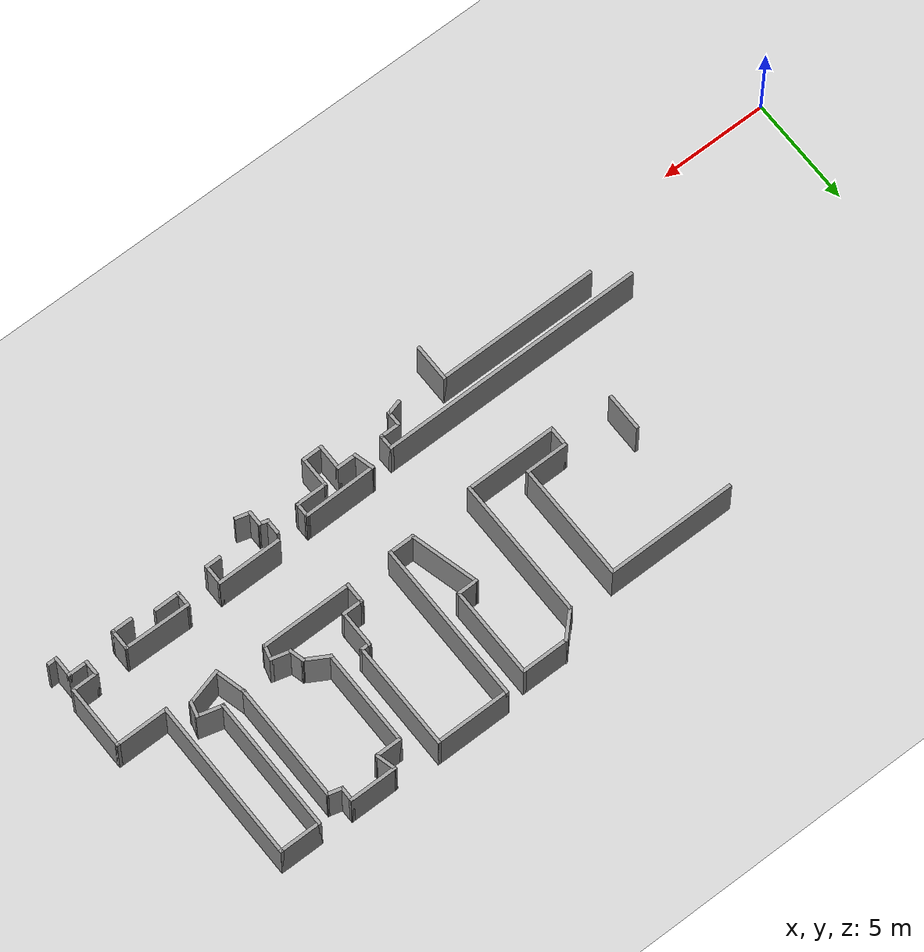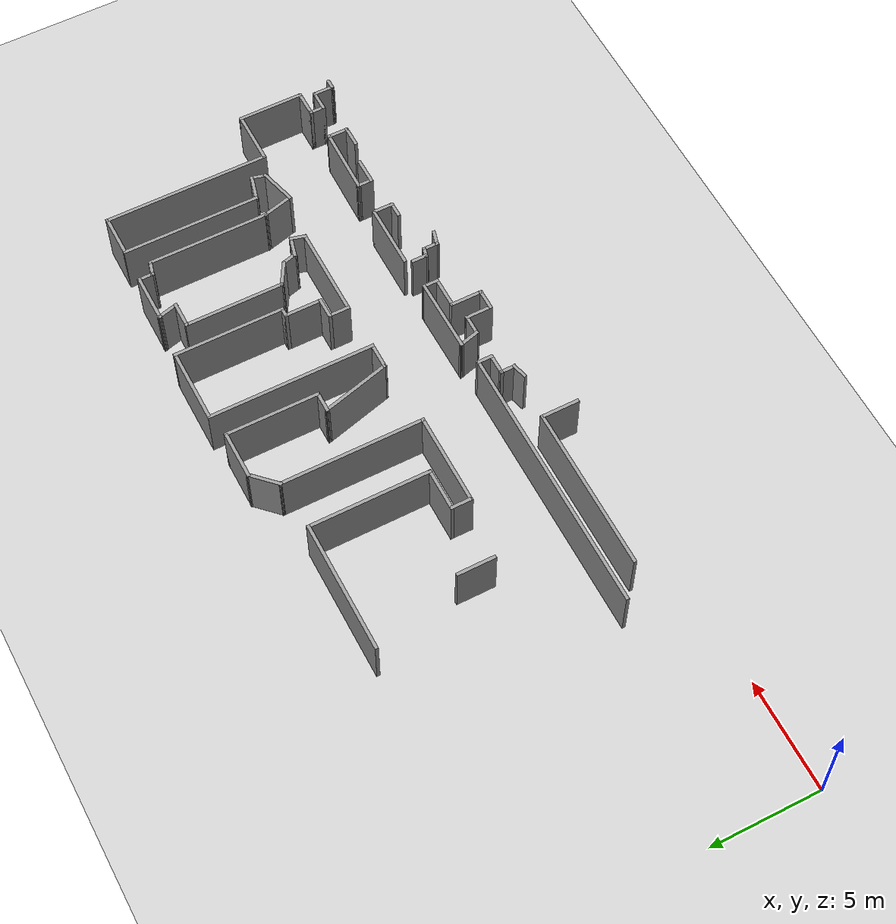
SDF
<sdf version="1.7">
 <world name="default">
  <model name="ground_plane">
   <static>1</static>
   <link name="link">
    <collision name="collision">
     <geometry><plane><normal>0 0 1</normal><size>100 100</size></plane></geometry>
     <surface>
      <contact><collide_bitmask>65535</collide_bitmask></contact>
      <friction><ode><mu>100</mu><mu2>50</mu2></ode></friction>
     </surface>
    </collision>
    <visual name="visual">
     <cast_shadows>0</cast_shadows>
     <geometry><plane><normal>0 0 1</normal><size>100 100</size></plane></geometry>
     <material>
      <script><uri>file://media/materials/scripts/gazebo.material</uri><name>Gazebo/Grey</name></script>
     </material>
    </visual>
   </link>
  </model>
  <model name="Hospital">
   <pose>0.328682 -0.388502 0 0 -0 0</pose>
   <link name="Wall_100">
    <collision name="Wall_100_Collision">
     <geometry><box><size>7.5 0.15 2.5</size></box></geometry>
     <pose>0 0 1.25 0 -0 0</pose>
    </collision>
    <visual name="Wall_100_Visual">
     <pose>0 0 1.25 0 -0 0</pose>
     <geometry><box><size>7.5 0.15 2.5</size></box></geometry>
     <material>
      <script><uri>file://media/materials/scripts/gazebo.material</uri><name>Gazebo/Grey</name></script>
      <ambient>1 1 1 1</ambient>
     </material>
     <meta><layer>0</layer></meta>
    </visual>
    <pose>34.79 10.5774 0 0 -0 -1.5708</pose>
   </link>
   <link name="Wall_101">
    <collision name="Wall_101_Collision">
     <geometry><box><size>2.5 0.15 2.5</size></box></geometry>
     <pose>0 0 1.25 0 -0 0</pose>
    </collision>
    <visual name="Wall_101_Visual">
     <pose>0 0 1.25 0 -0 0</pose>
     <geometry><box><size>2.5 0.15 2.5</size></box></geometry>
     <material>
      <script><uri>file://media/materials/scripts/gazebo.material</uri><name>Gazebo/Grey</name></script>
      <ambient>1 1 1 1</ambient>
     </material>
     <meta><layer>0</layer></meta>
    </visual>
    <pose>35.965 6.90241 0 0 -0 0</pose>
   </link>
   <link name="Wall_102">
    <collision name="Wall_102_Collision">
     <geometry><box><size>3 0.15 2.5</size></box></geometry>
     <pose>0 0 1.25 0 -0 0</pose>
    </collision>
    <visual name="Wall_102_Visual">
     <pose>0 0 1.25 0 -0 0</pose>
     <geometry><box><size>3 0.15 2.5</size></box></geometry>
     <material>
      <script><uri>file://media/materials/scripts/gazebo.material</uri><name>Gazebo/Grey</name></script>
      <ambient>1 1 1 1</ambient>
     </material>
     <meta><layer>0</layer></meta>
    </visual>
    <pose>37.14 5.47741 0 0 -0 -1.5708</pose>
   </link>
   <link name="Wall_103">
    <collision name="Wall_103_Collision">
     <geometry><box><size>1.25 0.15 2.5</size></box></geometry>
     <pose>0 0 1.25 0 -0 0</pose>
    </collision>
    <visual name="Wall_103_Visual">
     <pose>0 0 1.25 0 -0 0</pose>
     <geometry><box><size>1.25 0.15 2.5</size></box></geometry>
     <material>
      <script><uri>file://media/materials/scripts/gazebo.material</uri><name>Gazebo/Grey</name></script>
      <ambient>1 1 1 1</ambient>
     </material>
     <meta><layer>0</layer></meta>
    </visual>
    <pose>36.59 4.05241 0 0 -0 3.14159</pose>
   </link>
   <link name="Wall_104">
    <collision name="Wall_104_Collision">
     <geometry><box><size>0.75 0.15 2.5</size></box></geometry>
     <pose>0 0 1.25 0 -0 0</pose>
    </collision>
    <visual name="Wall_104_Visual">
     <pose>0 0 1.25 0 -0 0</pose>
     <geometry><box><size>0.75 0.15 2.5</size></box></geometry>
     <material>
      <script><uri>file://media/materials/scripts/gazebo.material</uri><name>Gazebo/Grey</name></script>
      <ambient>1 1 1 1</ambient>
     </material>
     <meta><layer>0</layer></meta>
    </visual>
    <pose>36.04 3.75241 0 0 -0 -1.5708</pose>
   </link>
   <link name="Wall_105">
    <collision name="Wall_105_Collision">
     <geometry><box><size>1 0.15 2.5</size></box></geometry>
     <pose>0 0 1.25 0 -0 0</pose>
    </collision>
    <visual name="Wall_105_Visual">
     <pose>0 0 1.25 0 -0 0</pose>
     <geometry><box><size>1 0.15 2.5</size></box></geometry>
     <material>
      <script><uri>file://media/materials/scripts/gazebo.material</uri><name>Gazebo/Grey</name></script>
      <ambient>1 1 1 1</ambient>
     </material>
     <meta><layer>0</layer></meta>
    </visual>
    <pose>36.465 3.45241 0 0 -0 0</pose>
   </link>
   <link name="Wall_106">
    <collision name="Wall_106_Collision">
     <geometry><box><size>1 0.15 2.5</size></box></geometry>
     <pose>0 0 1.25 0 -0 0</pose>
    </collision>
    <visual name="Wall_106_Visual">
     <pose>0 0 1.25 0 -0 0</pose>
     <geometry><box><size>1 0.15 2.5</size></box></geometry>
     <material>
      <script><uri>file://media/materials/scripts/gazebo.material</uri><name>Gazebo/Grey</name></script>
      <ambient>1 1 1 1</ambient>
     </material>
     <meta><layer>0</layer></meta>
    </visual>
    <pose>36.89 3.02741 0 0 -0 -1.5708</pose>
   </link>
   <link name="Wall_107">
    <collision name="Wall_107_Collision">
     <geometry><box><size>0.5 0.15 2.5</size></box></geometry>
     <pose>0 0 1.25 0 -0 0</pose>
    </collision>
    <visual name="Wall_107_Visual">
     <pose>0 0 1.25 0 -0 0</pose>
     <geometry><box><size>0.5 0.15 2.5</size></box></geometry>
     <material>
      <script><uri>file://media/materials/scripts/gazebo.material</uri><name>Gazebo/Grey</name></script>
      <ambient>1 1 1 1</ambient>
     </material>
     <meta><layer>0</layer></meta>
    </visual>
    <pose>37.065 2.60241 0 0 -0 0</pose>
   </link>
   <link name="Wall_131">
    <collision name="Wall_131_Collision">
     <geometry><box><size>0.75 0.15 2.5</size></box></geometry>
     <pose>0 0 1.25 0 -0 0</pose>
    </collision>
    <visual name="Wall_131_Visual">
     <pose>0 0 1.25 0 -0 0</pose>
     <geometry><box><size>0.75 0.15 2.5</size></box></geometry>
     <material>
      <script><uri>file://media/materials/scripts/gazebo.material</uri><name>Gazebo/Grey</name></script>
      <ambient>1 1 1 1</ambient>
     </material>
     <meta><layer>0</layer></meta>
    </visual>
    <pose>20.0552 2.37276 0 0 -0 0.261799</pose>
   </link>
   <link name="Wall_132">
    <collision name="Wall_132_Collision">
     <geometry><box><size>0.75 0.15 2.5</size></box></geometry>
     <pose>0 0 1.25 0 -0 0</pose>
    </collision>
    <visual name="Wall_132_Visual">
     <pose>0 0 1.25 0 -0 0</pose>
     <geometry><box><size>0.75 0.15 2.5</size></box></geometry>
     <material>
      <script><uri>file://media/materials/scripts/gazebo.material</uri><name>Gazebo/Grey</name></script>
      <ambient>1 1 1 1</ambient>
     </material>
     <meta><layer>0</layer></meta>
    </visual>
    <pose>20.3449 2.75041 0 0 -0 1.5708</pose>
   </link>
   <link name="Wall_133">
    <collision name="Wall_133_Collision">
     <geometry><box><size>1 0.15 2.5</size></box></geometry>
     <pose>0 0 1.25 0 -0 0</pose>
    </collision>
    <visual name="Wall_133_Visual">
     <pose>0 0 1.25 0 -0 0</pose>
     <geometry><box><size>1 0.15 2.5</size></box></geometry>
     <material>
      <script><uri>file://media/materials/scripts/gazebo.material</uri><name>Gazebo/Grey</name></script>
      <ambient>1 1 1 1</ambient>
     </material>
     <meta><layer>0</layer></meta>
    </visual>
    <pose>20.7699 3.05041 0 0 -0 0</pose>
   </link>
   <link name="Wall_134">
    <collision name="Wall_134_Collision">
     <geometry><box><size>0.75 0.15 2.5</size></box></geometry>
     <pose>0 0 1.25 0 -0 0</pose>
    </collision>
    <visual name="Wall_134_Visual">
     <pose>0 0 1.25 0 -0 0</pose>
     <geometry><box><size>0.75 0.15 2.5</size></box></geometry>
     <material>
      <script><uri>file://media/materials/scripts/gazebo.material</uri><name>Gazebo/Grey</name></script>
      <ambient>1 1 1 1</ambient>
     </material>
     <meta><layer>0</layer></meta>
    </visual>
    <pose>21.1949 3.35041 0 0 -0 1.5708</pose>
   </link>
   <link name="Wall_135">
    <collision name="Wall_135_Collision">
     <geometry><box><size>12.25 0.15 2.5</size></box></geometry>
     <pose>0 0 1.25 0 -0 0</pose>
    </collision>
    <visual name="Wall_135_Visual">
     <pose>0 0 1.25 0 -0 0</pose>
     <geometry><box><size>12.25 0.15 2.5</size></box></geometry>
     <material>
      <script><uri>file://media/materials/scripts/gazebo.material</uri><name>Gazebo/Grey</name></script>
      <ambient>1 1 1 1</ambient>
     </material>
     <meta><layer>0</layer></meta>
    </visual>
    <pose>15.1449 3.65041 0 0 -0 3.14159</pose>
   </link>
   <link name="Wall_140">
    <collision name="Wall_140_Collision">
     <geometry><box><size>7.5 0.15 2.5</size></box></geometry>
     <pose>0 0 1.25 0 -0 0</pose>
    </collision>
    <visual name="Wall_140_Visual">
     <pose>0 0 1.25 0 -0 0</pose>
     <geometry><box><size>7.5 0.15 2.5</size></box></geometry>
     <material>
      <script><uri>file://media/materials/scripts/gazebo.material</uri><name>Gazebo/Grey</name></script>
      <ambient>1 1 1 1</ambient>
     </material>
     <meta><layer>0</layer></meta>
    </visual>
    <pose>14.034 2.58789 0 0 -0 0</pose>
   </link>
   <link name="Wall_141">
    <collision name="Wall_141_Collision">
     <geometry><box><size>1.75 0.15 2.5</size></box></geometry>
     <pose>0 0 1.25 0 -0 0</pose>
    </collision>
    <visual name="Wall_141_Visual">
     <pose>0 0 1.25 0 -0 0</pose>
     <geometry><box><size>1.75 0.15 2.5</size></box></geometry>
     <material>
      <script><uri>file://media/materials/scripts/gazebo.material</uri><name>Gazebo/Grey</name></script>
      <ambient>1 1 1 1</ambient>
     </material>
     <meta><layer>0</layer></meta>
    </visual>
    <pose>17.709 1.78789 0 0 -0 -1.5708</pose>
   </link>
   <link name="Wall_409">
    <collision name="Wall_409_Collision">
     <geometry><box><size>1 0.15 2.5</size></box></geometry>
     <pose>0 0 1.25 0 -0 0</pose>
    </collision>
    <visual name="Wall_409_Visual">
     <pose>0 0 1.25 0 -0 0</pose>
     <geometry><box><size>1 0.15 2.5</size></box></geometry>
     <material>
      <script><uri>file://media/materials/scripts/gazebo.material</uri><name>Gazebo/Grey</name></script>
      <ambient>1 1 1 1</ambient>
     </material>
     <meta><layer>0</layer></meta>
    </visual>
    <pose>22.3914 3.44561 0 0 -0 -1.309</pose>
   </link>
   <link name="Wall_410">
    <collision name="Wall_410_Collision">
     <geometry><box><size>1 0.15 2.5</size></box></geometry>
     <pose>0 0 1.25 0 -0 0</pose>
    </collision>
    <visual name="Wall_410_Visual">
     <pose>0 0 1.25 0 -0 0</pose>
     <geometry><box><size>1 0.15 2.5</size></box></geometry>
     <material>
      <script><uri>file://media/materials/scripts/gazebo.material</uri><name>Gazebo/Grey</name></script>
      <ambient>1 1 1 1</ambient>
     </material>
     <meta><layer>0</layer></meta>
    </visual>
    <pose>22.9264 3.03509 0 0 -0 0</pose>
   </link>
   <link name="Wall_411">
    <collision name="Wall_411_Collision">
     <geometry><box><size>1.25 0.15 2.5</size></box></geometry>
     <pose>0 0 1.25 0 -0 0</pose>
    </collision>
    <visual name="Wall_411_Visual">
     <pose>0 0 1.25 0 -0 0</pose>
     <geometry><box><size>1.25 0.15 2.5</size></box></geometry>
     <material>
      <script><uri>file://media/materials/scripts/gazebo.material</uri><name>Gazebo/Grey</name></script>
      <ambient>1 1 1 1</ambient>
     </material>
     <meta><layer>0</layer></meta>
    </visual>
    <pose>23.3514 2.48509 0 0 -0 -1.5708</pose>
   </link>
   <link name="Wall_412">
    <collision name="Wall_412_Collision">
     <geometry><box><size>1 0.15 2.5</size></box></geometry>
     <pose>0 0 1.25 0 -0 0</pose>
    </collision>
    <visual name="Wall_412_Visual">
     <pose>0 0 1.25 0 -0 0</pose>
     <geometry><box><size>1 0.15 2.5</size></box></geometry>
     <material>
      <script><uri>file://media/materials/scripts/gazebo.material</uri><name>Gazebo/Grey</name></script>
      <ambient>1 1 1 1</ambient>
     </material>
     <meta><layer>0</layer></meta>
    </visual>
    <pose>23.7764 1.93509 0 0 -0 0</pose>
   </link>
   <link name="Wall_413">
    <collision name="Wall_413_Collision">
     <geometry><box><size>1.5 0.15 2.5</size></box></geometry>
     <pose>0 0 1.25 0 -0 0</pose>
    </collision>
    <visual name="Wall_413_Visual">
     <pose>0 0 1.25 0 -0 0</pose>
     <geometry><box><size>1.5 0.15 2.5</size></box></geometry>
     <material>
      <script><uri>file://media/materials/scripts/gazebo.material</uri><name>Gazebo/Grey</name></script>
      <ambient>1 1 1 1</ambient>
     </material>
     <meta><layer>0</layer></meta>
    </visual>
    <pose>24.2014 2.61009 0 0 -0 1.5708</pose>
   </link>
   <link name="Wall_414">
    <collision name="Wall_414_Collision">
     <geometry><box><size>1.5 0.15 2.5</size></box></geometry>
     <pose>0 0 1.25 0 -0 0</pose>
    </collision>
    <visual name="Wall_414_Visual">
     <pose>0 0 1.25 0 -0 0</pose>
     <geometry><box><size>1.5 0.15 2.5</size></box></geometry>
     <material>
      <script><uri>file://media/materials/scripts/gazebo.material</uri><name>Gazebo/Grey</name></script>
      <ambient>1 1 1 1</ambient>
     </material>
     <meta><layer>0</layer></meta>
    </visual>
    <pose>24.8764 3.28509 0 0 -0 0</pose>
   </link>
   <link name="Wall_415">
    <collision name="Wall_415_Collision">
     <geometry><box><size>0.75 0.15 2.5</size></box></geometry>
     <pose>0 0 1.25 0 -0 0</pose>
    </collision>
    <visual name="Wall_415_Visual">
     <pose>0 0 1.25 0 -0 0</pose>
     <geometry><box><size>0.75 0.15 2.5</size></box></geometry>
     <material>
      <script><uri>file://media/materials/scripts/gazebo.material</uri><name>Gazebo/Grey</name></script>
      <ambient>1 1 1 1</ambient>
     </material>
     <meta><layer>0</layer></meta>
    </visual>
    <pose>25.5514 3.58509 0 0 -0 1.5708</pose>
   </link>
   <link name="Wall_416">
    <collision name="Wall_416_Collision">
     <geometry><box><size>3.42012 0.15 2.5</size></box></geometry>
     <pose>0 0 1.25 0 -0 0</pose>
    </collision>
    <visual name="Wall_416_Visual">
     <pose>0 0 1.25 0 -0 0</pose>
     <geometry><box><size>3.42012 0.15 2.5</size></box></geometry>
     <material>
      <script><uri>file://media/materials/scripts/gazebo.material</uri><name>Gazebo/Grey</name></script>
      <ambient>1 1 1 1</ambient>
     </material>
     <meta><layer>0</layer></meta>
    </visual>
    <pose>23.9164 3.87061 0 0 -0 -3.13274</pose>
   </link>
   <link name="Wall_418">
    <collision name="Wall_418_Collision">
     <geometry><box><size>3 0.15 2.5</size></box></geometry>
     <pose>0 0 1.25 0 -0 0</pose>
    </collision>
    <visual name="Wall_418_Visual">
     <pose>0 0 1.25 0 -0 0</pose>
     <geometry><box><size>3 0.15 2.5</size></box></geometry>
     <material>
      <script><uri>file://media/materials/scripts/gazebo.material</uri><name>Gazebo/Grey</name></script>
      <ambient>1 1 1 1</ambient>
     </material>
     <meta><layer>0</layer></meta>
    </visual>
    <pose>28.5207 4.01795 0 0 -0 0</pose>
   </link>
   <link name="Wall_419">
    <collision name="Wall_419_Collision">
     <geometry><box><size>1 0.15 2.5</size></box></geometry>
     <pose>0 0 1.25 0 -0 0</pose>
    </collision>
    <visual name="Wall_419_Visual">
     <pose>0 0 1.25 0 -0 0</pose>
     <geometry><box><size>1 0.15 2.5</size></box></geometry>
     <material>
      <script><uri>file://media/materials/scripts/gazebo.material</uri><name>Gazebo/Grey</name></script>
      <ambient>1 1 1 1</ambient>
     </material>
     <meta><layer>0</layer></meta>
    </visual>
    <pose>29.9457 3.59295 0 0 -0 -1.5708</pose>
   </link>
   <link name="Wall_420">
    <collision name="Wall_420_Collision">
     <geometry><box><size>0.75 0.15 2.5</size></box></geometry>
     <pose>0 0 1.25 0 -0 0</pose>
    </collision>
    <visual name="Wall_420_Visual">
     <pose>0 0 1.25 0 -0 0</pose>
     <geometry><box><size>0.75 0.15 2.5</size></box></geometry>
     <material>
      <script><uri>file://media/materials/scripts/gazebo.material</uri><name>Gazebo/Grey</name></script>
      <ambient>1 1 1 1</ambient>
     </material>
     <meta><layer>0</layer></meta>
    </visual>
    <pose>29.6457 3.16795 0 0 -0 3.14159</pose>
   </link>
   <link name="Wall_432">
    <collision name="Wall_432_Collision">
     <geometry><box><size>0.75 0.15 2.5</size></box></geometry>
     <pose>0 0 1.25 0 -0 0</pose>
    </collision>
    <visual name="Wall_432_Visual">
     <pose>0 0 1.25 0 -0 0</pose>
     <geometry><box><size>0.75 0.15 2.5</size></box></geometry>
     <material>
      <script><uri>file://media/materials/scripts/gazebo.material</uri><name>Gazebo/Grey</name></script>
      <ambient>1 1 1 1</ambient>
     </material>
     <meta><layer>0</layer></meta>
    </visual>
    <pose>27.5303 2.33752 0 0 -0 2.87979</pose>
   </link>
   <link name="Wall_433">
    <collision name="Wall_433_Collision">
     <geometry><box><size>0.75 0.15 2.5</size></box></geometry>
     <pose>0 0 1.25 0 -0 0</pose>
    </collision>
    <visual name="Wall_433_Visual">
     <pose>0 0 1.25 0 -0 0</pose>
     <geometry><box><size>0.75 0.15 2.5</size></box></geometry>
     <material>
      <script><uri>file://media/materials/scripts/gazebo.material</uri><name>Gazebo/Grey</name></script>
      <ambient>1 1 1 1</ambient>
     </material>
     <meta><layer>0</layer></meta>
    </visual>
    <pose>27.2405 2.71517 0 0 -0 1.5708</pose>
   </link>
   <link name="Wall_434">
    <collision name="Wall_434_Collision">
     <geometry><box><size>0.5 0.15 2.5</size></box></geometry>
     <pose>0 0 1.25 0 -0 0</pose>
    </collision>
    <visual name="Wall_434_Visual">
     <pose>0 0 1.25 0 -0 0</pose>
     <geometry><box><size>0.5 0.15 2.5</size></box></geometry>
     <material>
      <script><uri>file://media/materials/scripts/gazebo.material</uri><name>Gazebo/Grey</name></script>
      <ambient>1 1 1 1</ambient>
     </material>
     <meta><layer>0</layer></meta>
    </visual>
    <pose>27.0715 3.06046 0 0 -0 2.87979</pose>
   </link>
   <link name="Wall_435">
    <collision name="Wall_435_Collision">
     <geometry><box><size>0.75 0.15 2.5</size></box></geometry>
     <pose>0 0 1.25 0 -0 0</pose>
    </collision>
    <visual name="Wall_435_Visual">
     <pose>0 0 1.25 0 -0 0</pose>
     <geometry><box><size>0.75 0.15 2.5</size></box></geometry>
     <material>
      <script><uri>file://media/materials/scripts/gazebo.material</uri><name>Gazebo/Grey</name></script>
      <ambient>1 1 1 1</ambient>
     </material>
     <meta><layer>0</layer></meta>
    </visual>
    <pose>26.9024 3.40576 0 0 -0 1.5708</pose>
   </link>
   <link name="Wall_437">
    <collision name="Wall_437_Collision">
     <geometry><box><size>0.75 0.15 2.5</size></box></geometry>
     <pose>0 0 1.25 0 -0 0</pose>
    </collision>
    <visual name="Wall_437_Visual">
     <pose>0 0 1.25 0 -0 0</pose>
     <geometry><box><size>0.75 0.15 2.5</size></box></geometry>
     <material>
      <script><uri>file://media/materials/scripts/gazebo.material</uri><name>Gazebo/Grey</name></script>
      <ambient>1 1 1 1</ambient>
     </material>
     <meta><layer>0</layer></meta>
    </visual>
    <pose>31.5053 3.6775 0 0 -0 -1.5708</pose>
   </link>
   <link name="Wall_438">
    <collision name="Wall_438_Collision">
     <geometry><box><size>1.25 0.15 2.5</size></box></geometry>
     <pose>0 0 1.25 0 -0 0</pose>
    </collision>
    <visual name="Wall_438_Visual">
     <pose>0 0 1.25 0 -0 0</pose>
     <geometry><box><size>1.25 0.15 2.5</size></box></geometry>
     <material>
      <script><uri>file://media/materials/scripts/gazebo.material</uri><name>Gazebo/Grey</name></script>
      <ambient>1 1 1 1</ambient>
     </material>
     <meta><layer>0</layer></meta>
    </visual>
    <pose>32.0553 3.3775 0 0 -0 0</pose>
   </link>
   <link name="Wall_448">
    <collision name="Wall_448_Collision">
     <geometry><box><size>1 0.15 2.5</size></box></geometry>
     <pose>0 0 1.25 0 -0 0</pose>
    </collision>
    <visual name="Wall_448_Visual">
     <pose>0 0 1.25 0 -0 0</pose>
     <geometry><box><size>1 0.15 2.5</size></box></geometry>
     <material>
      <script><uri>file://media/materials/scripts/gazebo.material</uri><name>Gazebo/Grey</name></script>
      <ambient>1 1 1 1</ambient>
     </material>
     <meta><layer>0</layer></meta>
    </visual>
    <pose>34.0422 3.07866 0 0 -0 0</pose>
   </link>
   <link name="Wall_449">
    <collision name="Wall_449_Collision">
     <geometry><box><size>1 0.15 2.5</size></box></geometry>
     <pose>0 0 1.25 0 -0 0</pose>
    </collision>
    <visual name="Wall_449_Visual">
     <pose>0 0 1.25 0 -0 0</pose>
     <geometry><box><size>1 0.15 2.5</size></box></geometry>
     <material>
      <script><uri>file://media/materials/scripts/gazebo.material</uri><name>Gazebo/Grey</name></script>
      <ambient>1 1 1 1</ambient>
     </material>
     <meta><layer>0</layer></meta>
    </visual>
    <pose>34.4672 3.50366 0 0 -0 1.5708</pose>
   </link>
   <link name="Wall_450">
    <collision name="Wall_450_Collision">
     <geometry><box><size>3.11233 0.15 2.5</size></box></geometry>
     <pose>0 0 1.25 0 -0 0</pose>
    </collision>
    <visual name="Wall_450_Visual">
     <pose>0 0 1.25 0 -0 0</pose>
     <geometry><box><size>3.11233 0.15 2.5</size></box></geometry>
     <material>
      <script><uri>file://media/materials/scripts/gazebo.material</uri><name>Gazebo/Grey</name></script>
      <ambient>1 1 1 1</ambient>
     </material>
     <meta><layer>0</layer></meta>
    </visual>
    <pose>32.9863 3.95308 0 0 -0 3.12511</pose>
   </link>
   <link name="Wall_60">
    <collision name="Wall_60_Collision">
     <geometry><box><size>1.75 0.15 2.5</size></box></geometry>
     <pose>0 0 1.25 0 -0 0</pose>
    </collision>
    <visual name="Wall_60_Visual">
     <pose>0 0 1.25 0 -0 0</pose>
     <geometry><box><size>1.75 0.15 2.5</size></box></geometry>
     <material>
      <script><uri>file://media/materials/scripts/gazebo.material</uri><name>Gazebo/Grey</name></script>
      <ambient>1 1 1 1</ambient>
     </material>
     <meta><layer>0</layer></meta>
    </visual>
    <pose>13.0135 8.12356 0 0 -0 1.5708</pose>
   </link>
   <link name="Wall_63">
    <collision name="Wall_63_Collision">
     <geometry><box><size>6 0.15 2.5</size></box></geometry>
     <pose>0 0 1.25 0 -0 0</pose>
    </collision>
    <visual name="Wall_63_Visual">
     <pose>0 0 1.25 0 -0 0</pose>
     <geometry><box><size>6 0.15 2.5</size></box></geometry>
     <material>
      <script><uri>file://media/materials/scripts/gazebo.material</uri><name>Gazebo/Grey</name></script>
      <ambient>1 1 1 1</ambient>
     </material>
     <meta><layer>0</layer></meta>
    </visual>
    <pose>14.6345 13.123 0 0 -0 0</pose>
   </link>
   <link name="Wall_64">
    <collision name="Wall_64_Collision">
     <geometry><box><size>5.5 0.15 2.5</size></box></geometry>
     <pose>0 0 1.25 0 -0 0</pose>
    </collision>
    <visual name="Wall_64_Visual">
     <pose>0 0 1.25 0 -0 0</pose>
     <geometry><box><size>5.5 0.15 2.5</size></box></geometry>
     <material>
      <script><uri>file://media/materials/scripts/gazebo.material</uri><name>Gazebo/Grey</name></script>
      <ambient>1 1 1 1</ambient>
     </material>
     <meta><layer>0</layer></meta>
    </visual>
    <pose>17.5595 10.448 0 0 -0 -1.5708</pose>
   </link>
   <link name="Wall_65">
    <collision name="Wall_65_Collision">
     <geometry><box><size>2 0.15 2.5</size></box></geometry>
     <pose>0 0 1.25 0 -0 0</pose>
    </collision>
    <visual name="Wall_65_Visual">
     <pose>0 0 1.25 0 -0 0</pose>
     <geometry><box><size>2 0.15 2.5</size></box></geometry>
     <material>
      <script><uri>file://media/materials/scripts/gazebo.material</uri><name>Gazebo/Grey</name></script>
      <ambient>1 1 1 1</ambient>
     </material>
     <meta><layer>0</layer></meta>
    </visual>
    <pose>16.6345 7.77297 0 0 -0 3.14159</pose>
   </link>
   <link name="Wall_66">
    <collision name="Wall_66_Collision">
     <geometry><box><size>1 0.15 2.5</size></box></geometry>
     <pose>0 0 1.25 0 -0 0</pose>
    </collision>
    <visual name="Wall_66_Visual">
     <pose>0 0 1.25 0 -0 0</pose>
     <geometry><box><size>1 0.15 2.5</size></box></geometry>
     <material>
      <script><uri>file://media/materials/scripts/gazebo.material</uri><name>Gazebo/Grey</name></script>
      <ambient>1 1 1 1</ambient>
     </material>
     <meta><layer>0</layer></meta>
    </visual>
    <pose>15.7095 7.34797 0 0 -0 -1.5708</pose>
   </link>
   <link name="Wall_67">
    <collision name="Wall_67_Collision">
     <geometry><box><size>4.25 0.15 2.5</size></box></geometry>
     <pose>0 0 1.25 0 -0 0</pose>
    </collision>
    <visual name="Wall_67_Visual">
     <pose>0 0 1.25 0 -0 0</pose>
     <geometry><box><size>4.25 0.15 2.5</size></box></geometry>
     <material>
      <script><uri>file://media/materials/scripts/gazebo.material</uri><name>Gazebo/Grey</name></script>
      <ambient>1 1 1 1</ambient>
     </material>
     <meta><layer>0</layer></meta>
    </visual>
    <pose>17.7595 6.92297 0 0 -0 0</pose>
   </link>
   <link name="Wall_68">
    <collision name="Wall_68_Collision">
     <geometry><box><size>6.5 0.15 2.5</size></box></geometry>
     <pose>0 0 1.25 0 -0 0</pose>
    </collision>
    <visual name="Wall_68_Visual">
     <pose>0 0 1.25 0 -0 0</pose>
     <geometry><box><size>6.5 0.15 2.5</size></box></geometry>
     <material>
      <script><uri>file://media/materials/scripts/gazebo.material</uri><name>Gazebo/Grey</name></script>
      <ambient>1 1 1 1</ambient>
     </material>
     <meta><layer>0</layer></meta>
    </visual>
    <pose>19.8095 10.098 0 0 -0 1.5708</pose>
   </link>
   <link name="Wall_69">
    <collision name="Wall_69_Collision">
     <geometry><box><size>1.5 0.15 2.5</size></box></geometry>
     <pose>0 0 1.25 0 -0 0</pose>
    </collision>
    <visual name="Wall_69_Visual">
     <pose>0 0 1.25 0 -0 0</pose>
     <geometry><box><size>1.5 0.15 2.5</size></box></geometry>
     <material>
      <script><uri>file://media/materials/scripts/gazebo.material</uri><name>Gazebo/Grey</name></script>
      <ambient>1 1 1 1</ambient>
     </material>
     <meta><layer>0</layer></meta>
    </visual>
    <pose>20.2868 13.7503 0 0 -0 0.785398</pose>
   </link>
   <link name="Wall_70">
    <collision name="Wall_70_Collision">
     <geometry><box><size>2.25 0.15 2.5</size></box></geometry>
     <pose>0 0 1.25 0 -0 0</pose>
    </collision>
    <visual name="Wall_70_Visual">
     <pose>0 0 1.25 0 -0 0</pose>
     <geometry><box><size>2.25 0.15 2.5</size></box></geometry>
     <material>
      <script><uri>file://media/materials/scripts/gazebo.material</uri><name>Gazebo/Grey</name></script>
      <ambient>1 1 1 1</ambient>
     </material>
     <meta><layer>0</layer></meta>
    </visual>
    <pose>21.8141 14.2276 0 0 -0 0</pose>
   </link>
   <link name="Wall_71">
    <collision name="Wall_71_Collision">
     <geometry><box><size>4.25 0.15 2.5</size></box></geometry>
     <pose>0 0 1.25 0 -0 0</pose>
    </collision>
    <visual name="Wall_71_Visual">
     <pose>0 0 1.25 0 -0 0</pose>
     <geometry><box><size>4.25 0.15 2.5</size></box></geometry>
     <material>
      <script><uri>file://media/materials/scripts/gazebo.material</uri><name>Gazebo/Grey</name></script>
      <ambient>1 1 1 1</ambient>
     </material>
     <meta><layer>0</layer></meta>
    </visual>
    <pose>22.8641 12.1776 0 0 -0 -1.5708</pose>
   </link>
   <link name="Wall_72">
    <collision name="Wall_72_Collision">
     <geometry><box><size>1 0.15 2.5</size></box></geometry>
     <pose>0 0 1.25 0 -0 0</pose>
    </collision>
    <visual name="Wall_72_Visual">
     <pose>0 0 1.25 0 -0 0</pose>
     <geometry><box><size>1 0.15 2.5</size></box></geometry>
     <material>
      <script><uri>file://media/materials/scripts/gazebo.material</uri><name>Gazebo/Grey</name></script>
      <ambient>1 1 1 1</ambient>
     </material>
     <meta><layer>0</layer></meta>
    </visual>
    <pose>22.4391 10.1276 0 0 -0 3.14159</pose>
   </link>
   <link name="Wall_73">
    <collision name="Wall_73_Collision">
     <geometry><box><size>3.25 0.15 2.5</size></box></geometry>
     <pose>0 0 1.25 0 -0 0</pose>
    </collision>
    <visual name="Wall_73_Visual">
     <pose>0 0 1.25 0 -0 0</pose>
     <geometry><box><size>3.25 0.15 2.5</size></box></geometry>
     <material>
      <script><uri>file://media/materials/scripts/gazebo.material</uri><name>Gazebo/Grey</name></script>
      <ambient>1 1 1 1</ambient>
     </material>
     <meta><layer>0</layer></meta>
    </visual>
    <pose>22.4153 8.63038 0 0 -0 -1.309</pose>
   </link>
   <link name="Wall_74">
    <collision name="Wall_74_Collision">
     <geometry><box><size>1.25 0.15 2.5</size></box></geometry>
     <pose>0 0 1.25 0 -0 0</pose>
    </collision>
    <visual name="Wall_74_Visual">
     <pose>0 0 1.25 0 -0 0</pose>
     <geometry><box><size>1.25 0.15 2.5</size></box></geometry>
     <material>
      <script><uri>file://media/materials/scripts/gazebo.material</uri><name>Gazebo/Grey</name></script>
      <ambient>1 1 1 1</ambient>
     </material>
     <meta><layer>0</layer></meta>
    </visual>
    <pose>23.3665 7.13319 0 0 -0 0</pose>
   </link>
   <link name="Wall_75">
    <collision name="Wall_75_Collision">
     <geometry><box><size>7.5 0.15 2.5</size></box></geometry>
     <pose>0 0 1.25 0 -0 0</pose>
    </collision>
    <visual name="Wall_75_Visual">
     <pose>0 0 1.25 0 -0 0</pose>
     <geometry><box><size>7.5 0.15 2.5</size></box></geometry>
     <material>
      <script><uri>file://media/materials/scripts/gazebo.material</uri><name>Gazebo/Grey</name></script>
      <ambient>1 1 1 1</ambient>
     </material>
     <meta><layer>0</layer></meta>
    </visual>
    <pose>23.9165 10.8082 0 0 -0 1.5708</pose>
   </link>
   <link name="Wall_76">
    <collision name="Wall_76_Collision">
     <geometry><box><size>3.5 0.15 2.5</size></box></geometry>
     <pose>0 0 1.25 0 -0 0</pose>
    </collision>
    <visual name="Wall_76_Visual">
     <pose>0 0 1.25 0 -0 0</pose>
     <geometry><box><size>3.5 0.15 2.5</size></box></geometry>
     <material>
      <script><uri>file://media/materials/scripts/gazebo.material</uri><name>Gazebo/Grey</name></script>
      <ambient>1 1 1 1</ambient>
     </material>
     <meta><layer>0</layer></meta>
    </visual>
    <pose>25.5915 14.4832 0 0 -0 0</pose>
   </link>
   <link name="Wall_77">
    <collision name="Wall_77_Collision">
     <geometry><box><size>5 0.15 2.5</size></box></geometry>
     <pose>0 0 1.25 0 -0 0</pose>
    </collision>
    <visual name="Wall_77_Visual">
     <pose>0 0 1.25 0 -0 0</pose>
     <geometry><box><size>5 0.15 2.5</size></box></geometry>
     <material>
      <script><uri>file://media/materials/scripts/gazebo.material</uri><name>Gazebo/Grey</name></script>
      <ambient>1 1 1 1</ambient>
     </material>
     <meta><layer>0</layer></meta>
    </visual>
    <pose>27.2665 12.0582 0 0 -0 -1.5708</pose>
   </link>
   <link name="Wall_78">
    <collision name="Wall_78_Collision">
     <geometry><box><size>0.5 0.15 2.5</size></box></geometry>
     <pose>0 0 1.25 0 -0 0</pose>
    </collision>
    <visual name="Wall_78_Visual">
     <pose>0 0 1.25 0 -0 0</pose>
     <geometry><box><size>0.5 0.15 2.5</size></box></geometry>
     <material>
      <script><uri>file://media/materials/scripts/gazebo.material</uri><name>Gazebo/Grey</name></script>
      <ambient>1 1 1 1</ambient>
     </material>
     <meta><layer>0</layer></meta>
    </visual>
    <pose>27.0915 9.63319 0 0 -0 3.14159</pose>
   </link>
   <link name="Wall_79">
    <collision name="Wall_79_Collision">
     <geometry><box><size>1.75 0.15 2.5</size></box></geometry>
     <pose>0 0 1.25 0 -0 0</pose>
    </collision>
    <visual name="Wall_79_Visual">
     <pose>0 0 1.25 0 -0 0</pose>
     <geometry><box><size>1.75 0.15 2.5</size></box></geometry>
     <material>
      <script><uri>file://media/materials/scripts/gazebo.material</uri><name>Gazebo/Grey</name></script>
      <ambient>1 1 1 1</ambient>
     </material>
     <meta><layer>0</layer></meta>
    </visual>
    <pose>26.9165 8.83319 0 0 -0 -1.5708</pose>
   </link>
   <link name="Wall_80">
    <collision name="Wall_80_Collision">
     <geometry><box><size>1 0.15 2.5</size></box></geometry>
     <pose>0 0 1.25 0 -0 0</pose>
    </collision>
    <visual name="Wall_80_Visual">
     <pose>0 0 1.25 0 -0 0</pose>
     <geometry><box><size>1 0.15 2.5</size></box></geometry>
     <material>
      <script><uri>file://media/materials/scripts/gazebo.material</uri><name>Gazebo/Grey</name></script>
      <ambient>1 1 1 1</ambient>
     </material>
     <meta><layer>0</layer></meta>
    </visual>
    <pose>26.4915 8.03319 0 0 -0 3.14159</pose>
   </link>
   <link name="Wall_81">
    <collision name="Wall_81_Collision">
     <geometry><box><size>1 0.15 2.5</size></box></geometry>
     <pose>0 0 1.25 0 -0 0</pose>
    </collision>
    <visual name="Wall_81_Visual">
     <pose>0 0 1.25 0 -0 0</pose>
     <geometry><box><size>1 0.15 2.5</size></box></geometry>
     <material>
      <script><uri>file://media/materials/scripts/gazebo.material</uri><name>Gazebo/Grey</name></script>
      <ambient>1 1 1 1</ambient>
     </material>
     <meta><layer>0</layer></meta>
    </visual>
    <pose>26.0665 7.60819 0 0 -0 -1.5708</pose>
   </link>
   <link name="Wall_82">
    <collision name="Wall_82_Collision">
     <geometry><box><size>4.25 0.15 2.5</size></box></geometry>
     <pose>0 0 1.25 0 -0 0</pose>
    </collision>
    <visual name="Wall_82_Visual">
     <pose>0 0 1.25 0 -0 0</pose>
     <geometry><box><size>4.25 0.15 2.5</size></box></geometry>
     <material>
      <script><uri>file://media/materials/scripts/gazebo.material</uri><name>Gazebo/Grey</name></script>
      <ambient>1 1 1 1</ambient>
     </material>
     <meta><layer>0</layer></meta>
    </visual>
    <pose>28.1165 7.18319 0 0 -0 0</pose>
   </link>
   <link name="Wall_83">
    <collision name="Wall_83_Collision">
     <geometry><box><size>0.75 0.15 2.5</size></box></geometry>
     <pose>0 0 1.25 0 -0 0</pose>
    </collision>
    <visual name="Wall_83_Visual">
     <pose>0 0 1.25 0 -0 0</pose>
     <geometry><box><size>0.75 0.15 2.5</size></box></geometry>
     <material>
      <script><uri>file://media/materials/scripts/gazebo.material</uri><name>Gazebo/Grey</name></script>
      <ambient>1 1 1 1</ambient>
     </material>
     <meta><layer>0</layer></meta>
    </visual>
    <pose>30.2441 7.47297 0 0 -0 1.309</pose>
   </link>
   <link name="Wall_84">
    <collision name="Wall_84_Collision">
     <geometry><box><size>1 0.15 2.5</size></box></geometry>
     <pose>0 0 1.25 0 -0 0</pose>
    </collision>
    <visual name="Wall_84_Visual">
     <pose>0 0 1.25 0 -0 0</pose>
     <geometry><box><size>1 0.15 2.5</size></box></geometry>
     <material>
      <script><uri>file://media/materials/scripts/gazebo.material</uri><name>Gazebo/Grey</name></script>
      <ambient>1 1 1 1</ambient>
     </material>
     <meta><layer>0</layer></meta>
    </visual>
    <pose>29.9112 7.87275 0 0 -0 2.87979</pose>
   </link>
   <link name="Wall_85">
    <collision name="Wall_85_Collision">
     <geometry><box><size>0.75 0.15 2.5</size></box></geometry>
     <pose>0 0 1.25 0 -0 0</pose>
    </collision>
    <visual name="Wall_85_Visual">
     <pose>0 0 1.25 0 -0 0</pose>
     <geometry><box><size>0.75 0.15 2.5</size></box></geometry>
     <material>
      <script><uri>file://media/materials/scripts/gazebo.material</uri><name>Gazebo/Grey</name></script>
      <ambient>1 1 1 1</ambient>
     </material>
     <meta><layer>0</layer></meta>
    </visual>
    <pose>29.4231 8.27252 0 0 -0 1.8326</pose>
   </link>
   <link name="Wall_86">
    <collision name="Wall_86_Collision">
     <geometry><box><size>1.25 0.15 2.5</size></box></geometry>
     <pose>0 0 1.25 0 -0 0</pose>
    </collision>
    <visual name="Wall_86_Visual">
     <pose>0 0 1.25 0 -0 0</pose>
     <geometry><box><size>1.25 0.15 2.5</size></box></geometry>
     <material>
      <script><uri>file://media/materials/scripts/gazebo.material</uri><name>Gazebo/Grey</name></script>
      <ambient>1 1 1 1</ambient>
     </material>
     <meta><layer>0</layer></meta>
    </visual>
    <pose>28.8691 8.8373 0 0 -0 2.61799</pose>
   </link>
   <link name="Wall_87">
    <collision name="Wall_87_Collision">
     <geometry><box><size>4.5 0.15 2.5</size></box></geometry>
     <pose>0 0 1.25 0 -0 0</pose>
    </collision>
    <visual name="Wall_87_Visual">
     <pose>0 0 1.25 0 -0 0</pose>
     <geometry><box><size>4.5 0.15 2.5</size></box></geometry>
     <material>
      <script><uri>file://media/materials/scripts/gazebo.material</uri><name>Gazebo/Grey</name></script>
      <ambient>1 1 1 1</ambient>
     </material>
     <meta><layer>0</layer></meta>
    </visual>
    <pose>28.3928 11.2873 0 0 -0 1.5708</pose>
   </link>
   <link name="Wall_88">
    <collision name="Wall_88_Collision">
     <geometry><box><size>1.25 0.15 2.5</size></box></geometry>
     <pose>0 0 1.25 0 -0 0</pose>
    </collision>
    <visual name="Wall_88_Visual">
     <pose>0 0 1.25 0 -0 0</pose>
     <geometry><box><size>1.25 0.15 2.5</size></box></geometry>
     <material>
      <script><uri>file://media/materials/scripts/gazebo.material</uri><name>Gazebo/Grey</name></script>
      <ambient>1 1 1 1</ambient>
     </material>
     <meta><layer>0</layer></meta>
    </visual>
    <pose>28.9428 13.4623 0 0 -0 0</pose>
   </link>
   <link name="Wall_89">
    <collision name="Wall_89_Collision">
     <geometry><box><size>1 0.15 2.5</size></box></geometry>
     <pose>0 0 1.25 0 -0 0</pose>
    </collision>
    <visual name="Wall_89_Visual">
     <pose>0 0 1.25 0 -0 0</pose>
     <geometry><box><size>1 0.15 2.5</size></box></geometry>
     <material>
      <script><uri>file://media/materials/scripts/gazebo.material</uri><name>Gazebo/Grey</name></script>
      <ambient>1 1 1 1</ambient>
     </material>
     <meta><layer>0</layer></meta>
    </visual>
    <pose>29.3828 13.8728 0 0 -0 1.8326</pose>
   </link>
   <link name="Wall_90">
    <collision name="Wall_90_Collision">
     <geometry><box><size>2.25 0.15 2.5</size></box></geometry>
     <pose>0 0 1.25 0 -0 0</pose>
    </collision>
    <visual name="Wall_90_Visual">
     <pose>0 0 1.25 0 -0 0</pose>
     <geometry><box><size>2.25 0.15 2.5</size></box></geometry>
     <material>
      <script><uri>file://media/materials/scripts/gazebo.material</uri><name>Gazebo/Grey</name></script>
      <ambient>1 1 1 1</ambient>
     </material>
     <meta><layer>0</layer></meta>
    </visual>
    <pose>30.3228 14.2833 0 0 -0 0</pose>
   </link>
   <link name="Wall_91">
    <collision name="Wall_91_Collision">
     <geometry><box><size>0.75 0.15 2.5</size></box></geometry>
     <pose>0 0 1.25 0 -0 0</pose>
    </collision>
    <visual name="Wall_91_Visual">
     <pose>0 0 1.25 0 -0 0</pose>
     <geometry><box><size>0.75 0.15 2.5</size></box></geometry>
     <material>
      <script><uri>file://media/materials/scripts/gazebo.material</uri><name>Gazebo/Grey</name></script>
      <ambient>1 1 1 1</ambient>
     </material>
     <meta><layer>0</layer></meta>
    </visual>
    <pose>31.3728 13.9833 0 0 -0 -1.5708</pose>
   </link>
   <link name="Wall_92">
    <collision name="Wall_92_Collision">
     <geometry><box><size>0.75 0.15 2.5</size></box></geometry>
     <pose>0 0 1.25 0 -0 0</pose>
    </collision>
    <visual name="Wall_92_Visual">
     <pose>0 0 1.25 0 -0 0</pose>
     <geometry><box><size>0.75 0.15 2.5</size></box></geometry>
     <material>
      <script><uri>file://media/materials/scripts/gazebo.material</uri><name>Gazebo/Grey</name></script>
      <ambient>1 1 1 1</ambient>
     </material>
     <meta><layer>0</layer></meta>
    </visual>
    <pose>31.6626 13.6057 0 0 -0 -0.261799</pose>
   </link>
   <link name="Wall_93">
    <collision name="Wall_93_Collision">
     <geometry><box><size>5.5 0.15 2.5</size></box></geometry>
     <pose>0 0 1.25 0 -0 0</pose>
    </collision>
    <visual name="Wall_93_Visual">
     <pose>0 0 1.25 0 -0 0</pose>
     <geometry><box><size>5.5 0.15 2.5</size></box></geometry>
     <material>
      <script><uri>file://media/materials/scripts/gazebo.material</uri><name>Gazebo/Grey</name></script>
      <ambient>1 1 1 1</ambient>
     </material>
     <meta><layer>0</layer></meta>
    </visual>
    <pose>31.9524 10.853 0 0 -0 -1.5708</pose>
   </link>
   <link name="Wall_94">
    <collision name="Wall_94_Collision">
     <geometry><box><size>1.5 0.15 2.5</size></box></geometry>
     <pose>0 0 1.25 0 -0 0</pose>
    </collision>
    <visual name="Wall_94_Visual">
     <pose>0 0 1.25 0 -0 0</pose>
     <geometry><box><size>1.5 0.15 2.5</size></box></geometry>
     <material>
      <script><uri>file://media/materials/scripts/gazebo.material</uri><name>Gazebo/Grey</name></script>
      <ambient>1 1 1 1</ambient>
     </material>
     <meta><layer>0</layer></meta>
    </visual>
    <pose>32.1271 7.52604 0 0 -0 -1.309</pose>
   </link>
   <link name="Wall_95">
    <collision name="Wall_95_Collision">
     <geometry><box><size>1.75 0.15 2.5</size></box></geometry>
     <pose>0 0 1.25 0 -0 0</pose>
    </collision>
    <visual name="Wall_95_Visual">
     <pose>0 0 1.25 0 -0 0</pose>
     <geometry><box><size>1.75 0.15 2.5</size></box></geometry>
     <material>
      <script><uri>file://media/materials/scripts/gazebo.material</uri><name>Gazebo/Grey</name></script>
      <ambient>1 1 1 1</ambient>
     </material>
     <meta><layer>0</layer></meta>
    </visual>
    <pose>33.0745 7.0811 0 0 -0 0.261799</pose>
   </link>
   <link name="Wall_96">
    <collision name="Wall_96_Collision">
     <geometry><box><size>0.75 0.15 2.5</size></box></geometry>
     <pose>0 0 1.25 0 -0 0</pose>
    </collision>
    <visual name="Wall_96_Visual">
     <pose>0 0 1.25 0 -0 0</pose>
     <geometry><box><size>0.75 0.15 2.5</size></box></geometry>
     <material>
      <script><uri>file://media/materials/scripts/gazebo.material</uri><name>Gazebo/Grey</name></script>
      <ambient>1 1 1 1</ambient>
     </material>
     <meta><layer>0</layer></meta>
    </visual>
    <pose>33.9249 7.57793 0 0 -0 1.309</pose>
   </link>
   <link name="Wall_97">
    <collision name="Wall_97_Collision">
     <geometry><box><size>1.25 0.15 2.5</size></box></geometry>
     <pose>0 0 1.25 0 -0 0</pose>
    </collision>
    <visual name="Wall_97_Visual">
     <pose>0 0 1.25 0 -0 0</pose>
     <geometry><box><size>1.25 0.15 2.5</size></box></geometry>
     <material>
      <script><uri>file://media/materials/scripts/gazebo.material</uri><name>Gazebo/Grey</name></script>
      <ambient>1 1 1 1</ambient>
     </material>
     <meta><layer>0</layer></meta>
    </visual>
    <pose>33.4713 8.01006 0 0 -0 2.87979</pose>
   </link>
   <link name="Wall_98">
    <collision name="Wall_98_Collision">
     <geometry><box><size>6.25 0.15 2.5</size></box></geometry>
     <pose>0 0 1.25 0 -0 0</pose>
    </collision>
    <visual name="Wall_98_Visual">
     <pose>0 0 1.25 0 -0 0</pose>
     <geometry><box><size>6.25 0.15 2.5</size></box></geometry>
     <material>
      <script><uri>file://media/materials/scripts/gazebo.material</uri><name>Gazebo/Grey</name></script>
      <ambient>1 1 1 1</ambient>
     </material>
     <meta><layer>0</layer></meta>
    </visual>
    <pose>32.94 11.2024 0 0 -0 1.5708</pose>
   </link>
   <link name="Wall_99">
    <collision name="Wall_99_Collision">
     <geometry><box><size>2 0.15 2.5</size></box></geometry>
     <pose>0 0 1.25 0 -0 0</pose>
    </collision>
    <visual name="Wall_99_Visual">
     <pose>0 0 1.25 0 -0 0</pose>
     <geometry><box><size>2 0.15 2.5</size></box></geometry>
     <material>
      <script><uri>file://media/materials/scripts/gazebo.material</uri><name>Gazebo/Grey</name></script>
      <ambient>1 1 1 1</ambient>
     </material>
     <meta><layer>0</layer></meta>
    </visual>
    <pose>33.865 14.2524 0 0 -0 0</pose>
   </link>
   <static>1</static>
  </model>
 </world>
</sdf>
